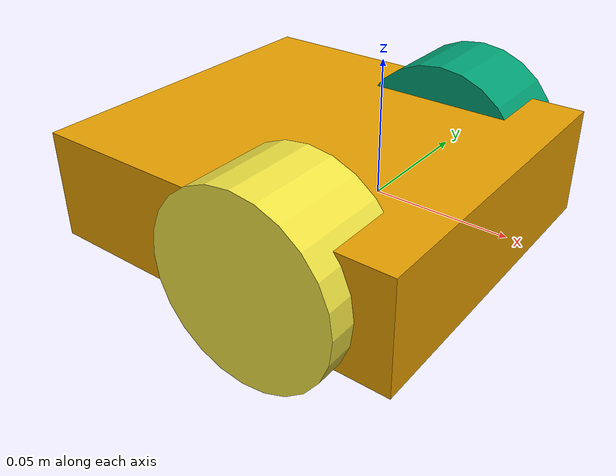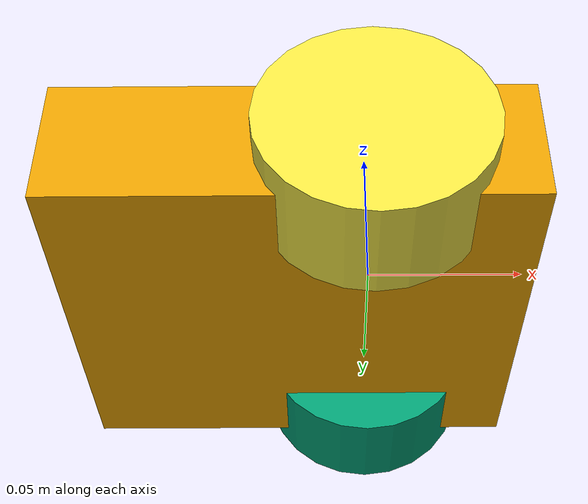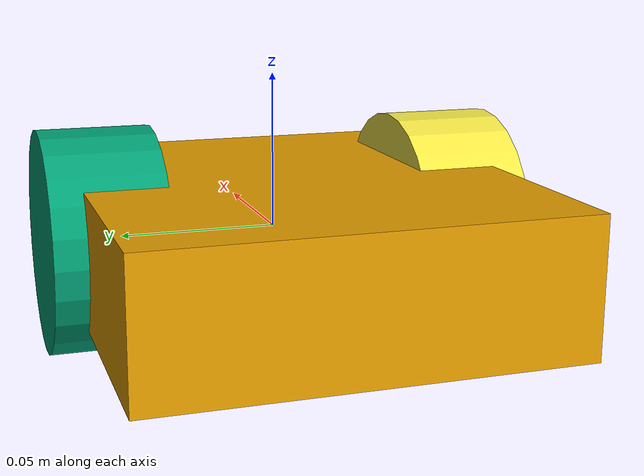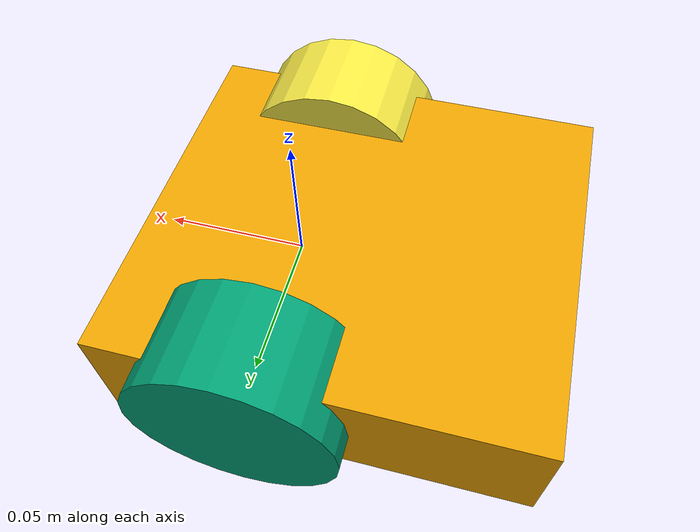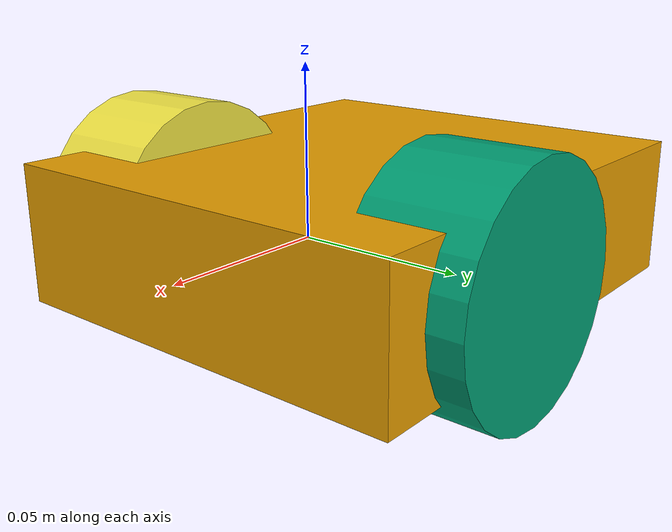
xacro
<?xml version="1.0"?>
<robot name="jetbot" xmlns:xacro="http://www.ros.org/wiki/xacro">

  <!-- Geometry parameters       -->
  <!-- Keep wheel_base_m and wheel_radius_m consistent with wheel_odom.yaml -->
  <xacro:property name="wheel_base_m"   value="0.115"/>
  <xacro:property name="wheel_radius_m" value="0.035"/>

  <!-- Approximate chassis dims (edit to match robot) -->
  <xacro:property name="base_length_m" value="0.143"/>
  <xacro:property name="base_width_m"  value="0.130"/>
  <!-- Switch commented below if you want to include Jetson Nano in chassis height -->
  <xacro:property name="base_height_m" value="0.042"/>

  <!-- Measure these from base_link (axle midpoint) -->
  <xacro:property name="front_extent_m" value="0.048"/>  <!-- axle → front -->
  <xacro:property name="rear_extent_m"  value="0.095"/>  <!-- axle → rear  -->

  <!-- Derived -->
  <xacro:property name="chassis_center_x" value="${(front_extent_m - rear_extent_m)/2.0}"/>

  <!-- Put chassis roughly centered vertically about axle; adjust if your axle is low/high -->
  <xacro:property name="chassis_center_z" value="0.0"/>

  <!-- RealSense mount transform (EDIT THESE to match measured mount) -->
<xacro:property name="rs_x" value="0.090"/>
<xacro:property name="rs_y" value="0.000"/>
<xacro:property name="rs_z" value="0.090"/>

<xacro:property name="rs_roll"  value="0.0"/>
<xacro:property name="rs_pitch" value="0.0"/>
<xacro:property name="rs_yaw"   value="0.0"/>

  <!-- Core links                -->
  <link name="base_link">
    <!-- Visual geometry (RViz) -->
    <visual>
      <!-- If your axle is forward of chassis center, set chassis_center_x != 0 -->
      <origin xyz="${chassis_center_x} 0 ${chassis_center_z}" rpy="0 0 0"/>
      <geometry>
        <box size="${base_length_m} ${base_width_m} ${base_height_m}"/>
      </geometry>
    </visual>

    <!-- Collision geometry (Nav2/costmaps, physics sims) -->
    <collision>
      <origin xyz="${chassis_center_x} 0 ${chassis_center_z}" rpy="0 0 0"/>
      <geometry>
        <box size="${base_length_m} ${base_width_m} ${base_height_m}"/>
      </geometry>
    </collision>
  </link>

  <!-- Optional, useful for 2D navigation stacks -->
  <link name="base_footprint"/>
  <joint name="base_footprint_joint" type="fixed">
    <parent link="base_link"/>
    <child link="base_footprint"/>
    <!-- Change depending on a) base_link location and b) if ground coincidence is needed -->
    <origin xyz="0 0 0" rpy="0 0 0"/>
  </joint>

  <!-- Wheels (static unless you publish joint states) -->
  <link name="left_wheel_link">
    <visual>
      <origin xyz="0 0 0" rpy="1.57079632679 0 0"/>
      <geometry>
        <cylinder radius="${wheel_radius_m}" length="0.035"/>
      </geometry>
    </visual>
  </link>

  <joint name="left_wheel_joint" type="continuous">
    <parent link="base_link"/>
    <child link="left_wheel_link"/>
    <origin xyz="0 ${wheel_base_m/2.0} 0" rpy="0 0 0"/>
    <axis xyz="0 1 0"/>
  </joint>

  <link name="right_wheel_link">
    <visual>
      <origin xyz="0 0 0" rpy="1.57079632679 0 0"/>
      <geometry>
        <cylinder radius="${wheel_radius_m}" length="0.035"/>
      </geometry>
    </visual>
  </link>

  <joint name="right_wheel_joint" type="continuous">
    <parent link="base_link"/>
    <child link="right_wheel_link"/>
    <origin xyz="0 ${-wheel_base_m/2.0} 0" rpy="0 0 0"/>
    <axis xyz="0 1 0"/>
  </joint>

  <!-- RealSense mount frame     -->
  <!-- We root the RealSense TF tree at this frame by setting:
       base_frame_id: realsense_mount_link
       in realsense_lowpower.yaml
  -->
  <link name="realsense_mount_link"/>
  <joint name="realsense_mount_joint" type="fixed">
    <parent link="base_link"/>
    <child link="realsense_mount_link"/>
    <origin xyz="${rs_x} ${rs_y} ${rs_z}" rpy="${rs_roll} ${rs_pitch} ${rs_yaw}"/>
  </joint>

</robot>
